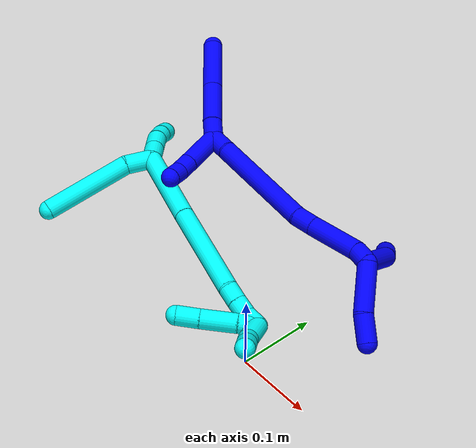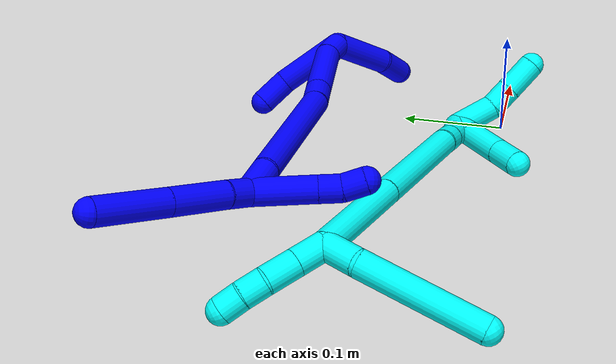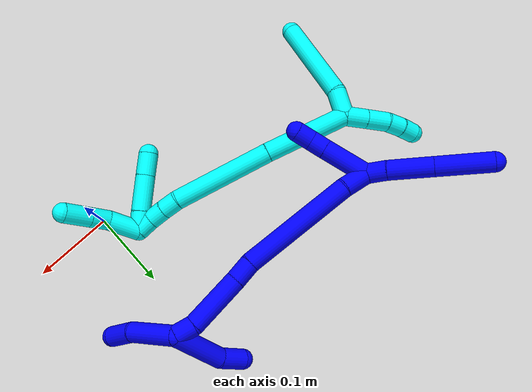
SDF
<sdf version="1.7">
 <world name="default">
  <model name="1">
   <static>0</static>
   <link name="1">
    <collision name="collision-cylinder-e_1_2_8">
     <pose>-0.003101 -0.00076 0.012139 0.06253 -0.249607 -0.007847</pose>
     <geometry><cylinder><radius>0.0125</radius><length>0.025104</length></cylinder></geometry>
     <surface>
      <friction><ode><mu>1.16</mu><mu2>1.16</mu2><slip1>0</slip1><slip2>0</slip2></ode></friction>
      <contact><ode><kp>1e+06</kp><kd>1</kd><max_vel>0</max_vel><min_depth>0.001</min_depth></ode></contact>
     </surface>
    </collision>
    <visual name="visual-cylinder-e_1_2_8">
     <pose>-0.003101 -0.00076 0.012139 0.06253 -0.249607 -0.007847</pose>
     <geometry><cylinder><radius>0.0125</radius><length>0.025104</length></cylinder></geometry>
     <material><ambient>0 0 1 1</ambient></material>
    </visual>
    <collision name="collision-cylinder-e_2_8_9">
     <pose>-0.011463 -0.001042 0.051624 -0.017496 -0.190067 0.001668</pose>
     <geometry><cylinder><radius>0.0125</radius><length>0.055702</length></cylinder></geometry>
     <surface>
      <friction><ode><mu>1.16</mu><mu2>1.16</mu2><slip1>0</slip1><slip2>0</slip2></ode></friction>
      <contact><ode><kp>1e+06</kp><kd>1</kd><max_vel>0</max_vel><min_depth>0.001</min_depth></ode></contact>
     </surface>
    </collision>
    <visual name="visual-cylinder-e_2_8_9">
     <pose>-0.011463 -0.001042 0.051624 -0.017496 -0.190067 0.001668</pose>
     <geometry><cylinder><radius>0.0125</radius><length>0.055702</length></cylinder></geometry>
     <material><ambient>0 0 1 1</ambient></material>
    </visual>
    <collision name="collision-cylinder-e_3_9_6">
     <pose>-0.023148 -0.000128 0.112962 -0.012815 -0.186739 0.0012</pose>
     <geometry><cylinder><radius>0.0125</radius><length>0.069194</length></cylinder></geometry>
     <surface>
      <friction><ode><mu>1.16</mu><mu2>1.16</mu2><slip1>0</slip1><slip2>0</slip2></ode></friction>
      <contact><ode><kp>1e+06</kp><kd>1</kd><max_vel>0</max_vel><min_depth>0.001</min_depth></ode></contact>
     </surface>
    </collision>
    <visual name="visual-cylinder-e_3_9_6">
     <pose>-0.023148 -0.000128 0.112962 -0.012815 -0.186739 0.0012</pose>
     <geometry><cylinder><radius>0.0125</radius><length>0.069194</length></cylinder></geometry>
     <material><ambient>0 0 1 1</ambient></material>
    </visual>
    <collision name="collision-cylinder-e_1_2_10">
     <pose>-0.009799 -0.009383 -0.025579 2.78999 -0.345245 -1.55218</pose>
     <geometry><cylinder><radius>0.0125</radius><length>0.057908</length></cylinder></geometry>
     <surface>
      <friction><ode><mu>1.16</mu><mu2>1.16</mu2><slip1>0</slip1><slip2>0</slip2></ode></friction>
      <contact><ode><kp>1e+06</kp><kd>1</kd><max_vel>0</max_vel><min_depth>0.001</min_depth></ode></contact>
     </surface>
    </collision>
    <visual name="visual-cylinder-e_1_2_10">
     <pose>-0.009799 -0.009383 -0.025579 2.78999 -0.345245 -1.55218</pose>
     <geometry><cylinder><radius>0.0125</radius><length>0.057908</length></cylinder></geometry>
     <material><ambient>0 0 1 1</ambient></material>
    </visual>
    <collision name="collision-cylinder-e_2_10_11">
     <pose>-0.023233 -0.02214 -0.060171 2.78349 -0.361186 -1.57957</pose>
     <geometry><cylinder><radius>0.0125</radius><length>0.020577</length></cylinder></geometry>
     <surface>
      <friction><ode><mu>1.16</mu><mu2>1.16</mu2><slip1>0</slip1><slip2>0</slip2></ode></friction>
      <contact><ode><kp>1e+06</kp><kd>1</kd><max_vel>0</max_vel><min_depth>0.001</min_depth></ode></contact>
     </surface>
    </collision>
    <visual name="visual-cylinder-e_2_10_11">
     <pose>-0.023233 -0.02214 -0.060171 2.78349 -0.361186 -1.57957</pose>
     <geometry><cylinder><radius>0.0125</radius><length>0.020577</length></cylinder></geometry>
     <material><ambient>0 0 1 1</ambient></material>
    </visual>
    <collision name="collision-cylinder-e_3_11_5">
     <pose>-0.029346 -0.031558 -0.077732 2.52601 -0.232313 -0.703559</pose>
     <geometry><cylinder><radius>0.0125</radius><length>0.021515</length></cylinder></geometry>
     <surface>
      <friction><ode><mu>1.16</mu><mu2>1.16</mu2><slip1>0</slip1><slip2>0</slip2></ode></friction>
      <contact><ode><kp>1e+06</kp><kd>1</kd><max_vel>0</max_vel><min_depth>0.001</min_depth></ode></contact>
     </surface>
    </collision>
    <visual name="visual-cylinder-e_3_11_5">
     <pose>-0.029346 -0.031558 -0.077732 2.52601 -0.232313 -0.703559</pose>
     <geometry><cylinder><radius>0.0125</radius><length>0.021515</length></cylinder></geometry>
     <material><ambient>0 0 1 1</ambient></material>
    </visual>
    <collision name="collision-cylinder-e_1_2_12">
     <pose>0.011809 -0.003394 -0.011176 2.84679 0.790903 2.45813</pose>
     <geometry><cylinder><radius>0.0125</radius><length>0.033219</length></cylinder></geometry>
     <surface>
      <friction><ode><mu>1.16</mu><mu2>1.16</mu2><slip1>0</slip1><slip2>0</slip2></ode></friction>
      <contact><ode><kp>1e+06</kp><kd>1</kd><max_vel>0</max_vel><min_depth>0.001</min_depth></ode></contact>
     </surface>
    </collision>
    <visual name="visual-cylinder-e_1_2_12">
     <pose>0.011809 -0.003394 -0.011176 2.84679 0.790903 2.45813</pose>
     <geometry><cylinder><radius>0.0125</radius><length>0.033219</length></cylinder></geometry>
     <material><ambient>0 0 1 1</ambient></material>
    </visual>
    <collision name="collision-cylinder-e_2_12_13">
     <pose>0.078215 -0.009401 -0.069756 3.08652 0.855044 3.02083</pose>
     <geometry><cylinder><radius>0.0125</radius><length>0.144705</length></cylinder></geometry>
     <surface>
      <friction><ode><mu>1.16</mu><mu2>1.16</mu2><slip1>0</slip1><slip2>0</slip2></ode></friction>
      <contact><ode><kp>1e+06</kp><kd>1</kd><max_vel>0</max_vel><min_depth>0.001</min_depth></ode></contact>
     </surface>
    </collision>
    <visual name="visual-cylinder-e_2_12_13">
     <pose>0.078215 -0.009401 -0.069756 3.08652 0.855044 3.02083</pose>
     <geometry><cylinder><radius>0.0125</radius><length>0.144705</length></cylinder></geometry>
     <material><ambient>0 0 1 1</ambient></material>
    </visual>
    <collision name="collision-cylinder-e_3_13_14">
     <pose>0.144475 -0.012041 -0.123844 3.13762 1.05043 3.13474</pose>
     <geometry><cylinder><radius>0.0125</radius><length>0.026883</length></cylinder></geometry>
     <surface>
      <friction><ode><mu>1.16</mu><mu2>1.16</mu2><slip1>0</slip1><slip2>0</slip2></ode></friction>
      <contact><ode><kp>1e+06</kp><kd>1</kd><max_vel>0</max_vel><min_depth>0.001</min_depth></ode></contact>
     </surface>
    </collision>
    <visual name="visual-cylinder-e_3_13_14">
     <pose>0.144475 -0.012041 -0.123844 3.13762 1.05043 3.13474</pose>
     <geometry><cylinder><radius>0.0125</radius><length>0.026883</length></cylinder></geometry>
     <material><ambient>0 0 1 1</ambient></material>
    </visual>
    <collision name="collision-cylinder-e_4_14_15">
     <pose>0.186707 -0.015673 -0.148285 2.94124 1.03572 2.79233</pose>
     <geometry><cylinder><radius>0.0125</radius><length>0.071072</length></cylinder></geometry>
     <surface>
      <friction><ode><mu>1.16</mu><mu2>1.16</mu2><slip1>0</slip1><slip2>0</slip2></ode></friction>
      <contact><ode><kp>1e+06</kp><kd>1</kd><max_vel>0</max_vel><min_depth>0.001</min_depth></ode></contact>
     </surface>
    </collision>
    <visual name="visual-cylinder-e_4_14_15">
     <pose>0.186707 -0.015673 -0.148285 2.94124 1.03572 2.79233</pose>
     <geometry><cylinder><radius>0.0125</radius><length>0.071072</length></cylinder></geometry>
     <material><ambient>0 0 1 1</ambient></material>
    </visual>
    <collision name="collision-cylinder-e_5_15_1">
     <pose>0.225257 -0.021465 -0.174817 2.89748 0.723133 2.51431</pose>
     <geometry><cylinder><radius>0.0125</radius><length>0.024121</length></cylinder></geometry>
     <surface>
      <friction><ode><mu>1.16</mu><mu2>1.16</mu2><slip1>0</slip1><slip2>0</slip2></ode></friction>
      <contact><ode><kp>1e+06</kp><kd>1</kd><max_vel>0</max_vel><min_depth>0.001</min_depth></ode></contact>
     </surface>
    </collision>
    <visual name="visual-cylinder-e_5_15_1">
     <pose>0.225257 -0.021465 -0.174817 2.89748 0.723133 2.51431</pose>
     <geometry><cylinder><radius>0.0125</radius><length>0.024121</length></cylinder></geometry>
     <material><ambient>0 0 1 1</ambient></material>
    </visual>
    <collision name="collision-cylinder-e_1_1_16">
     <pose>0.234258 -0.015686 -0.214457 -2.88907 0.032001 -0.250803</pose>
     <geometry><cylinder><radius>0.0125</radius><length>0.063787</length></cylinder></geometry>
     <surface>
      <friction><ode><mu>1.16</mu><mu2>1.16</mu2><slip1>0</slip1><slip2>0</slip2></ode></friction>
      <contact><ode><kp>1e+06</kp><kd>1</kd><max_vel>0</max_vel><min_depth>0.001</min_depth></ode></contact>
     </surface>
    </collision>
    <visual name="visual-cylinder-e_1_1_16">
     <pose>0.234258 -0.015686 -0.214457 -2.88907 0.032001 -0.250803</pose>
     <geometry><cylinder><radius>0.0125</radius><length>0.063787</length></cylinder></geometry>
     <material><ambient>0 0 1 1</ambient></material>
    </visual>
    <collision name="collision-cylinder-e_2_16_4">
     <pose>0.238936 -8.6e-05 -0.261328 -2.69645 0.203381 -0.84716</pose>
     <geometry><cylinder><radius>0.0125</radius><length>0.036213</length></cylinder></geometry>
     <surface>
      <friction><ode><mu>1.16</mu><mu2>1.16</mu2><slip1>0</slip1><slip2>0</slip2></ode></friction>
      <contact><ode><kp>1e+06</kp><kd>1</kd><max_vel>0</max_vel><min_depth>0.001</min_depth></ode></contact>
     </surface>
    </collision>
    <visual name="visual-cylinder-e_2_16_4">
     <pose>0.238936 -8.6e-05 -0.261328 -2.69645 0.203381 -0.84716</pose>
     <geometry><cylinder><radius>0.0125</radius><length>0.036213</length></cylinder></geometry>
     <material><ambient>0 0 1 1</ambient></material>
    </visual>
    <collision name="collision-cylinder-e_1_1_17">
     <pose>0.238022 0.003437 -0.163505 -0.932752 0.140938 -0.071038</pose>
     <geometry><cylinder><radius>0.0125</radius><length>0.068119</length></cylinder></geometry>
     <surface>
      <friction><ode><mu>1.16</mu><mu2>1.16</mu2><slip1>0</slip1><slip2>0</slip2></ode></friction>
      <contact><ode><kp>1e+06</kp><kd>1</kd><max_vel>0</max_vel><min_depth>0.001</min_depth></ode></contact>
     </surface>
    </collision>
    <visual name="visual-cylinder-e_1_1_17">
     <pose>0.238022 0.003437 -0.163505 -0.932752 0.140938 -0.071038</pose>
     <geometry><cylinder><radius>0.0125</radius><length>0.068119</length></cylinder></geometry>
     <material><ambient>0 0 1 1</ambient></material>
    </visual>
    <collision name="collision-cylinder-e_2_17_3">
     <pose>0.239753 0.042132 -0.132929 -0.835881 -0.192721 0.085801</pose>
     <geometry><cylinder><radius>0.0125</radius><length>0.031881</length></cylinder></geometry>
     <surface>
      <friction><ode><mu>1.16</mu><mu2>1.16</mu2><slip1>0</slip1><slip2>0</slip2></ode></friction>
      <contact><ode><kp>1e+06</kp><kd>1</kd><max_vel>0</max_vel><min_depth>0.001</min_depth></ode></contact>
     </surface>
    </collision>
    <visual name="visual-cylinder-e_2_17_3">
     <pose>0.239753 0.042132 -0.132929 -0.835881 -0.192721 0.085801</pose>
     <geometry><cylinder><radius>0.0125</radius><length>0.031881</length></cylinder></geometry>
     <material><ambient>0 0 1 1</ambient></material>
    </visual>
    <collision name="collision-sphere-3">
     <pose>0.2367 0.053739 -0.122438 0 -0 0</pose>
     <geometry><sphere><radius>0.0125</radius></sphere></geometry>
     <surface>
      <friction><ode><mu>1.16</mu><mu2>1.16</mu2><slip1>0</slip1><slip2>0</slip2></ode></friction>
      <contact><ode><kp>1e+06</kp><kd>1</kd><max_vel>0</max_vel><min_depth>0.001</min_depth></ode></contact>
     </surface>
    </collision>
    <visual name="visual-sphere-3">
     <pose>0.2367 0.053739 -0.122438 0 -0 0</pose>
     <geometry><sphere><radius>0.0125</radius></sphere></geometry>
     <material><ambient>0 0 1 1</ambient></material>
    </visual>
    <collision name="collision-sphere-17">
     <pose>0.242806 0.030524 -0.143419 0 -0 0</pose>
     <geometry><sphere><radius>0.0125</radius></sphere></geometry>
     <surface>
      <friction><ode><mu>1.16</mu><mu2>1.16</mu2><slip1>0</slip1><slip2>0</slip2></ode></friction>
      <contact><ode><kp>1e+06</kp><kd>1</kd><max_vel>0</max_vel><min_depth>0.001</min_depth></ode></contact>
     </surface>
    </collision>
    <visual name="visual-sphere-17">
     <pose>0.242806 0.030524 -0.143419 0 -0 0</pose>
     <geometry><sphere><radius>0.0125</radius></sphere></geometry>
     <material><ambient>0 0 1 1</ambient></material>
    </visual>
    <collision name="collision-sphere-4">
     <pose>0.242593 0.00755 -0.277333 0 -0 0</pose>
     <geometry><sphere><radius>0.0125</radius></sphere></geometry>
     <surface>
      <friction><ode><mu>1.16</mu><mu2>1.16</mu2><slip1>0</slip1><slip2>0</slip2></ode></friction>
      <contact><ode><kp>1e+06</kp><kd>1</kd><max_vel>0</max_vel><min_depth>0.001</min_depth></ode></contact>
     </surface>
    </collision>
    <visual name="visual-sphere-4">
     <pose>0.242593 0.00755 -0.277333 0 -0 0</pose>
     <geometry><sphere><radius>0.0125</radius></sphere></geometry>
     <material><ambient>0 0 1 1</ambient></material>
    </visual>
    <collision name="collision-sphere-16">
     <pose>0.235278 -0.007722 -0.245323 0 -0 0</pose>
     <geometry><sphere><radius>0.0125</radius></sphere></geometry>
     <surface>
      <friction><ode><mu>1.16</mu><mu2>1.16</mu2><slip1>0</slip1><slip2>0</slip2></ode></friction>
      <contact><ode><kp>1e+06</kp><kd>1</kd><max_vel>0</max_vel><min_depth>0.001</min_depth></ode></contact>
     </surface>
    </collision>
    <visual name="visual-sphere-16">
     <pose>0.235278 -0.007722 -0.245323 0 -0 0</pose>
     <geometry><sphere><radius>0.0125</radius></sphere></geometry>
     <material><ambient>0 0 1 1</ambient></material>
    </visual>
    <collision name="collision-sphere-1">
     <pose>0.233237 -0.023651 -0.183591 0 -0 0</pose>
     <geometry><sphere><radius>0.0125</radius></sphere></geometry>
     <surface>
      <friction><ode><mu>1.16</mu><mu2>1.16</mu2><slip1>0</slip1><slip2>0</slip2></ode></friction>
      <contact><ode><kp>1e+06</kp><kd>1</kd><max_vel>0</max_vel><min_depth>0.001</min_depth></ode></contact>
     </surface>
    </collision>
    <visual name="visual-sphere-1">
     <pose>0.233237 -0.023651 -0.183591 0 -0 0</pose>
     <geometry><sphere><radius>0.0125</radius></sphere></geometry>
     <material><ambient>0 0 1 1</ambient></material>
    </visual>
    <collision name="collision-sphere-15">
     <pose>0.217276 -0.01928 -0.166043 0 -0 0</pose>
     <geometry><sphere><radius>0.0125</radius></sphere></geometry>
     <surface>
      <friction><ode><mu>1.16</mu><mu2>1.16</mu2><slip1>0</slip1><slip2>0</slip2></ode></friction>
      <contact><ode><kp>1e+06</kp><kd>1</kd><max_vel>0</max_vel><min_depth>0.001</min_depth></ode></contact>
     </surface>
    </collision>
    <visual name="visual-sphere-15">
     <pose>0.217276 -0.01928 -0.166043 0 -0 0</pose>
     <geometry><sphere><radius>0.0125</radius></sphere></geometry>
     <material><ambient>0 0 1 1</ambient></material>
    </visual>
    <collision name="collision-sphere-14">
     <pose>0.156137 -0.012067 -0.130527 0 -0 0</pose>
     <geometry><sphere><radius>0.0125</radius></sphere></geometry>
     <surface>
      <friction><ode><mu>1.16</mu><mu2>1.16</mu2><slip1>0</slip1><slip2>0</slip2></ode></friction>
      <contact><ode><kp>1e+06</kp><kd>1</kd><max_vel>0</max_vel><min_depth>0.001</min_depth></ode></contact>
     </surface>
    </collision>
    <visual name="visual-sphere-14">
     <pose>0.156137 -0.012067 -0.130527 0 -0 0</pose>
     <geometry><sphere><radius>0.0125</radius></sphere></geometry>
     <material><ambient>0 0 1 1</ambient></material>
    </visual>
    <collision name="collision-sphere-13">
     <pose>0.132812 -0.012014 -0.117161 0 -0 0</pose>
     <geometry><sphere><radius>0.0125</radius></sphere></geometry>
     <surface>
      <friction><ode><mu>1.16</mu><mu2>1.16</mu2><slip1>0</slip1><slip2>0</slip2></ode></friction>
      <contact><ode><kp>1e+06</kp><kd>1</kd><max_vel>0</max_vel><min_depth>0.001</min_depth></ode></contact>
     </surface>
    </collision>
    <visual name="visual-sphere-13">
     <pose>0.132812 -0.012014 -0.117161 0 -0 0</pose>
     <geometry><sphere><radius>0.0125</radius></sphere></geometry>
     <material><ambient>0 0 1 1</ambient></material>
    </visual>
    <collision name="collision-sphere-12">
     <pose>0.023618 -0.006787 -0.022352 0 -0 0</pose>
     <geometry><sphere><radius>0.0125</radius></sphere></geometry>
     <surface>
      <friction><ode><mu>1.16</mu><mu2>1.16</mu2><slip1>0</slip1><slip2>0</slip2></ode></friction>
      <contact><ode><kp>1e+06</kp><kd>1</kd><max_vel>0</max_vel><min_depth>0.001</min_depth></ode></contact>
     </surface>
    </collision>
    <visual name="visual-sphere-12">
     <pose>0.023618 -0.006787 -0.022352 0 -0 0</pose>
     <geometry><sphere><radius>0.0125</radius></sphere></geometry>
     <material><ambient>0 0 1 1</ambient></material>
    </visual>
    <collision name="collision-sphere-5">
     <pose>-0.031823 -0.037603 -0.086279 0 -0 0</pose>
     <geometry><sphere><radius>0.0125</radius></sphere></geometry>
     <surface>
      <friction><ode><mu>1.16</mu><mu2>1.16</mu2><slip1>0</slip1><slip2>0</slip2></ode></friction>
      <contact><ode><kp>1e+06</kp><kd>1</kd><max_vel>0</max_vel><min_depth>0.001</min_depth></ode></contact>
     </surface>
    </collision>
    <visual name="visual-sphere-5">
     <pose>-0.031823 -0.037603 -0.086279 0 -0 0</pose>
     <geometry><sphere><radius>0.0125</radius></sphere></geometry>
     <material><ambient>0 0 1 1</ambient></material>
    </visual>
    <collision name="collision-sphere-8">
     <pose>-0.006201 -0.00152 0.024279 0 -0 0</pose>
     <geometry><sphere><radius>0.0125</radius></sphere></geometry>
     <surface>
      <friction><ode><mu>1.16</mu><mu2>1.16</mu2><slip1>0</slip1><slip2>0</slip2></ode></friction>
      <contact><ode><kp>1e+06</kp><kd>1</kd><max_vel>0</max_vel><min_depth>0.001</min_depth></ode></contact>
     </surface>
    </collision>
    <visual name="visual-sphere-8">
     <pose>-0.006201 -0.00152 0.024279 0 -0 0</pose>
     <geometry><sphere><radius>0.0125</radius></sphere></geometry>
     <material><ambient>0 0 1 1</ambient></material>
    </visual>
    <collision name="collision-sphere-2">
     <geometry><sphere><radius>0.0125</radius></sphere></geometry>
     <surface>
      <friction><ode><mu>1.16</mu><mu2>1.16</mu2><slip1>0</slip1><slip2>0</slip2></ode></friction>
      <contact><ode><kp>1e+06</kp><kd>1</kd><max_vel>0</max_vel><min_depth>0.001</min_depth></ode></contact>
     </surface>
    </collision>
    <visual name="visual-sphere-2">
     <geometry><sphere><radius>0.0125</radius></sphere></geometry>
     <material><ambient>0 0 1 1</ambient></material>
    </visual>
    <collision name="collision-sphere-9">
     <pose>-0.016725 -0.000563 0.078969 0 -0 0</pose>
     <geometry><sphere><radius>0.0125</radius></sphere></geometry>
     <surface>
      <friction><ode><mu>1.16</mu><mu2>1.16</mu2><slip1>0</slip1><slip2>0</slip2></ode></friction>
      <contact><ode><kp>1e+06</kp><kd>1</kd><max_vel>0</max_vel><min_depth>0.001</min_depth></ode></contact>
     </surface>
    </collision>
    <visual name="visual-sphere-9">
     <pose>-0.016725 -0.000563 0.078969 0 -0 0</pose>
     <geometry><sphere><radius>0.0125</radius></sphere></geometry>
     <material><ambient>0 0 1 1</ambient></material>
    </visual>
    <collision name="collision-sphere-6">
     <pose>-0.029571 0.000308 0.146954 0 -0 0</pose>
     <geometry><sphere><radius>0.0125</radius></sphere></geometry>
     <surface>
      <friction><ode><mu>1.16</mu><mu2>1.16</mu2><slip1>0</slip1><slip2>0</slip2></ode></friction>
      <contact><ode><kp>1e+06</kp><kd>1</kd><max_vel>0</max_vel><min_depth>0.001</min_depth></ode></contact>
     </surface>
    </collision>
    <visual name="visual-sphere-6">
     <pose>-0.029571 0.000308 0.146954 0 -0 0</pose>
     <geometry><sphere><radius>0.0125</radius></sphere></geometry>
     <material><ambient>0 0 1 1</ambient></material>
    </visual>
    <collision name="collision-sphere-10">
     <pose>-0.019598 -0.018767 -0.051157 0 -0 0</pose>
     <geometry><sphere><radius>0.0125</radius></sphere></geometry>
     <surface>
      <friction><ode><mu>1.16</mu><mu2>1.16</mu2><slip1>0</slip1><slip2>0</slip2></ode></friction>
      <contact><ode><kp>1e+06</kp><kd>1</kd><max_vel>0</max_vel><min_depth>0.001</min_depth></ode></contact>
     </surface>
    </collision>
    <visual name="visual-sphere-10">
     <pose>-0.019598 -0.018767 -0.051157 0 -0 0</pose>
     <geometry><sphere><radius>0.0125</radius></sphere></geometry>
     <material><ambient>0 0 1 1</ambient></material>
    </visual>
    <collision name="collision-sphere-11">
     <pose>-0.026869 -0.025513 -0.069185 0 -0 0</pose>
     <geometry><sphere><radius>0.0125</radius></sphere></geometry>
     <surface>
      <friction><ode><mu>1.16</mu><mu2>1.16</mu2><slip1>0</slip1><slip2>0</slip2></ode></friction>
      <contact><ode><kp>1e+06</kp><kd>1</kd><max_vel>0</max_vel><min_depth>0.001</min_depth></ode></contact>
     </surface>
    </collision>
    <visual name="visual-sphere-11">
     <pose>-0.026869 -0.025513 -0.069185 0 -0 0</pose>
     <geometry><sphere><radius>0.0125</radius></sphere></geometry>
     <material><ambient>0 0 1 1</ambient></material>
    </visual>
    <inertial>
     <pose>0.103673 -0.006158 -0.080619 0 -0 0</pose>
     <mass>0.75</mass>
     <inertia>
      <ixx>-6.8e-05</ixx>
      <ixy>0</ixy>
      <ixz>0</ixz>
      <iyy>0.000344</iyy>
      <iyz>0</iyz>
      <izz>-0.000244</izz>
     </inertia>
    </inertial>
   </link>
   <pose>-0.277218 0.187214 0.063351 -1.28737 -0.141916 0.627883</pose>
  </model>
  <model name="3">
   <static>0</static>
   <link name="3">
    <collision name="collision-cylinder-e_1_2_8">
     <pose>-0.014028 0.00648 -0.007565 -2.4333 -0.953312 1.89878</pose>
     <geometry><cylinder><radius>0.0125</radius><length>0.03441</length></cylinder></geometry>
     <surface>
      <friction><ode><mu>1.16</mu><mu2>1.16</mu2><slip1>0</slip1><slip2>0</slip2></ode></friction>
      <contact><ode><kp>1e+06</kp><kd>1</kd><max_vel>0</max_vel><min_depth>0.001</min_depth></ode></contact>
     </surface>
    </collision>
    <visual name="visual-cylinder-e_1_2_8">
     <pose>-0.014028 0.00648 -0.007565 -2.4333 -0.953312 1.89878</pose>
     <geometry><cylinder><radius>0.0125</radius><length>0.03441</length></cylinder></geometry>
     <material><ambient>0.003922 1 0.996078 1</ambient></material>
    </visual>
    <collision name="collision-cylinder-e_2_8_6">
     <pose>-0.063289 0.046647 -0.046181 -2.3155 -0.655586 1.3198</pose>
     <geometry><cylinder><radius>0.0125</radius><length>0.11559</length></cylinder></geometry>
     <surface>
      <friction><ode><mu>1.16</mu><mu2>1.16</mu2><slip1>0</slip1><slip2>0</slip2></ode></friction>
      <contact><ode><kp>1e+06</kp><kd>1</kd><max_vel>0</max_vel><min_depth>0.001</min_depth></ode></contact>
     </surface>
    </collision>
    <visual name="visual-cylinder-e_2_8_6">
     <pose>-0.063289 0.046647 -0.046181 -2.3155 -0.655586 1.3198</pose>
     <geometry><cylinder><radius>0.0125</radius><length>0.11559</length></cylinder></geometry>
     <material><ambient>0.003922 1 0.996078 1</ambient></material>
    </visual>
    <collision name="collision-cylinder-e_1_2_9">
     <pose>-0.002821 -0.000808 0.014085 0.057273 -0.197321 -0.00567</pose>
     <geometry><cylinder><radius>0.0125</radius><length>0.028775</length></cylinder></geometry>
     <surface>
      <friction><ode><mu>1.16</mu><mu2>1.16</mu2><slip1>0</slip1><slip2>0</slip2></ode></friction>
      <contact><ode><kp>1e+06</kp><kd>1</kd><max_vel>0</max_vel><min_depth>0.001</min_depth></ode></contact>
     </surface>
    </collision>
    <visual name="visual-cylinder-e_1_2_9">
     <pose>-0.002821 -0.000808 0.014085 0.057273 -0.197321 -0.00567</pose>
     <geometry><cylinder><radius>0.0125</radius><length>0.028775</length></cylinder></geometry>
     <material><ambient>0.003922 1 0.996078 1</ambient></material>
    </visual>
    <collision name="collision-cylinder-e_2_9_10">
     <pose>-0.0084 -0.002417 0.042498 0.055902 -0.189949 -0.005327</pose>
     <geometry><cylinder><radius>0.0125</radius><length>0.029226</length></cylinder></geometry>
     <surface>
      <friction><ode><mu>1.16</mu><mu2>1.16</mu2><slip1>0</slip1><slip2>0</slip2></ode></friction>
      <contact><ode><kp>1e+06</kp><kd>1</kd><max_vel>0</max_vel><min_depth>0.001</min_depth></ode></contact>
     </surface>
    </collision>
    <visual name="visual-cylinder-e_2_9_10">
     <pose>-0.0084 -0.002417 0.042498 0.055902 -0.189949 -0.005327</pose>
     <geometry><cylinder><radius>0.0125</radius><length>0.029226</length></cylinder></geometry>
     <material><ambient>0.003922 1 0.996078 1</ambient></material>
    </visual>
    <collision name="collision-cylinder-e_3_10_11">
     <pose>-0.01132 -0.002485 0.067595 -0.068004 -0.01494 0.000508</pose>
     <geometry><cylinder><radius>0.0125</radius><length>0.021591</length></cylinder></geometry>
     <surface>
      <friction><ode><mu>1.16</mu><mu2>1.16</mu2><slip1>0</slip1><slip2>0</slip2></ode></friction>
      <contact><ode><kp>1e+06</kp><kd>1</kd><max_vel>0</max_vel><min_depth>0.001</min_depth></ode></contact>
     </surface>
    </collision>
    <visual name="visual-cylinder-e_3_10_11">
     <pose>-0.01132 -0.002485 0.067595 -0.068004 -0.01494 0.000508</pose>
     <geometry><cylinder><radius>0.0125</radius><length>0.021591</length></cylinder></geometry>
     <material><ambient>0.003922 1 0.996078 1</ambient></material>
    </visual>
    <collision name="collision-cylinder-e_4_11_5">
     <pose>-0.010933 1.5e-05 0.088399 -0.174241 0.053759 -0.004697</pose>
     <geometry><cylinder><radius>0.0125</radius><length>0.020408</length></cylinder></geometry>
     <surface>
      <friction><ode><mu>1.16</mu><mu2>1.16</mu2><slip1>0</slip1><slip2>0</slip2></ode></friction>
      <contact><ode><kp>1e+06</kp><kd>1</kd><max_vel>0</max_vel><min_depth>0.001</min_depth></ode></contact>
     </surface>
    </collision>
    <visual name="visual-cylinder-e_4_11_5">
     <pose>-0.010933 1.5e-05 0.088399 -0.174241 0.053759 -0.004697</pose>
     <geometry><cylinder><radius>0.0125</radius><length>0.020408</length></cylinder></geometry>
     <material><ambient>0.003922 1 0.996078 1</ambient></material>
    </visual>
    <collision name="collision-cylinder-e_1_2_12">
     <pose>0.03673 0.011597 -0.037958 -2.84509 0.746684 -2.41308</pose>
     <geometry><cylinder><radius>0.0125</radius><length>0.108156</length></cylinder></geometry>
     <surface>
      <friction><ode><mu>1.16</mu><mu2>1.16</mu2><slip1>0</slip1><slip2>0</slip2></ode></friction>
      <contact><ode><kp>1e+06</kp><kd>1</kd><max_vel>0</max_vel><min_depth>0.001</min_depth></ode></contact>
     </surface>
    </collision>
    <visual name="visual-cylinder-e_1_2_12">
     <pose>0.03673 0.011597 -0.037958 -2.84509 0.746684 -2.41308</pose>
     <geometry><cylinder><radius>0.0125</radius><length>0.108156</length></cylinder></geometry>
     <material><ambient>0.003922 1 0.996078 1</ambient></material>
    </visual>
    <collision name="collision-cylinder-e_2_12_13">
     <pose>0.118708 0.038374 -0.118949 -2.80245 0.78117 -2.35343</pose>
     <geometry><cylinder><radius>0.0125</radius><length>0.128523</length></cylinder></geometry>
     <surface>
      <friction><ode><mu>1.16</mu><mu2>1.16</mu2><slip1>0</slip1><slip2>0</slip2></ode></friction>
      <contact><ode><kp>1e+06</kp><kd>1</kd><max_vel>0</max_vel><min_depth>0.001</min_depth></ode></contact>
     </surface>
    </collision>
    <visual name="visual-cylinder-e_2_12_13">
     <pose>0.118708 0.038374 -0.118949 -2.80245 0.78117 -2.35343</pose>
     <geometry><cylinder><radius>0.0125</radius><length>0.128523</length></cylinder></geometry>
     <material><ambient>0.003922 1 0.996078 1</ambient></material>
    </visual>
    <collision name="collision-cylinder-e_3_13_14">
     <pose>0.1725 0.057436 -0.167747 -2.54909 0.887955 -2.00053</pose>
     <geometry><cylinder><radius>0.0125</radius><length>0.02203</length></cylinder></geometry>
     <surface>
      <friction><ode><mu>1.16</mu><mu2>1.16</mu2><slip1>0</slip1><slip2>0</slip2></ode></friction>
      <contact><ode><kp>1e+06</kp><kd>1</kd><max_vel>0</max_vel><min_depth>0.001</min_depth></ode></contact>
     </surface>
    </collision>
    <visual name="visual-cylinder-e_3_13_14">
     <pose>0.1725 0.057436 -0.167747 -2.54909 0.887955 -2.00053</pose>
     <geometry><cylinder><radius>0.0125</radius><length>0.02203</length></cylinder></geometry>
     <material><ambient>0.003922 1 0.996078 1</ambient></material>
    </visual>
    <collision name="collision-cylinder-e_4_14_15">
     <pose>0.189387 0.064765 -0.178717 -2.55656 0.928344 -2.05852</pose>
     <geometry><cylinder><radius>0.0125</radius><length>0.020839</length></cylinder></geometry>
     <surface>
      <friction><ode><mu>1.16</mu><mu2>1.16</mu2><slip1>0</slip1><slip2>0</slip2></ode></friction>
      <contact><ode><kp>1e+06</kp><kd>1</kd><max_vel>0</max_vel><min_depth>0.001</min_depth></ode></contact>
     </surface>
    </collision>
    <visual name="visual-cylinder-e_4_14_15">
     <pose>0.189387 0.064765 -0.178717 -2.55656 0.928344 -2.05852</pose>
     <geometry><cylinder><radius>0.0125</radius><length>0.020839</length></cylinder></geometry>
     <material><ambient>0.003922 1 0.996078 1</ambient></material>
    </visual>
    <collision name="collision-cylinder-e_5_15_1">
     <pose>0.206561 0.069831 -0.188816 -2.82218 1.0425 -2.59462</pose>
     <geometry><cylinder><radius>0.0125</radius><length>0.020453</length></cylinder></geometry>
     <surface>
      <friction><ode><mu>1.16</mu><mu2>1.16</mu2><slip1>0</slip1><slip2>0</slip2></ode></friction>
      <contact><ode><kp>1e+06</kp><kd>1</kd><max_vel>0</max_vel><min_depth>0.001</min_depth></ode></contact>
     </surface>
    </collision>
    <visual name="visual-cylinder-e_5_15_1">
     <pose>0.206561 0.069831 -0.188816 -2.82218 1.0425 -2.59462</pose>
     <geometry><cylinder><radius>0.0125</radius><length>0.020453</length></cylinder></geometry>
     <material><ambient>0.003922 1 0.996078 1</ambient></material>
    </visual>
    <collision name="collision-cylinder-e_1_1_16">
     <pose>0.214462 0.070744 -0.214088 3.10698 -0.045633 -1.84388</pose>
     <geometry><cylinder><radius>0.0125</radius><length>0.040823</length></cylinder></geometry>
     <surface>
      <friction><ode><mu>1.16</mu><mu2>1.16</mu2><slip1>0</slip1><slip2>0</slip2></ode></friction>
      <contact><ode><kp>1e+06</kp><kd>1</kd><max_vel>0</max_vel><min_depth>0.001</min_depth></ode></contact>
     </surface>
    </collision>
    <visual name="visual-cylinder-e_1_1_16">
     <pose>0.214462 0.070744 -0.214088 3.10698 -0.045633 -1.84388</pose>
     <geometry><cylinder><radius>0.0125</radius><length>0.040823</length></cylinder></geometry>
     <material><ambient>0.003922 1 0.996078 1</ambient></material>
    </visual>
    <collision name="collision-cylinder-e_2_16_17">
     <pose>0.214737 0.066325 -0.24611 2.83284 0.098352 0.612629</pose>
     <geometry><cylinder><radius>0.0125</radius><length>0.024562</length></cylinder></geometry>
     <surface>
      <friction><ode><mu>1.16</mu><mu2>1.16</mu2><slip1>0</slip1><slip2>0</slip2></ode></friction>
      <contact><ode><kp>1e+06</kp><kd>1</kd><max_vel>0</max_vel><min_depth>0.001</min_depth></ode></contact>
     </surface>
    </collision>
    <visual name="visual-cylinder-e_2_16_17">
     <pose>0.214737 0.066325 -0.24611 2.83284 0.098352 0.612629</pose>
     <geometry><cylinder><radius>0.0125</radius><length>0.024562</length></cylinder></geometry>
     <material><ambient>0.003922 1 0.996078 1</ambient></material>
    </visual>
    <collision name="collision-cylinder-e_3_17_4">
     <pose>0.217573 0.057059 -0.274065 2.81353 0.094312 0.555486</pose>
     <geometry><cylinder><radius>0.0125</radius><length>0.034615</length></cylinder></geometry>
     <surface>
      <friction><ode><mu>1.16</mu><mu2>1.16</mu2><slip1>0</slip1><slip2>0</slip2></ode></friction>
      <contact><ode><kp>1e+06</kp><kd>1</kd><max_vel>0</max_vel><min_depth>0.001</min_depth></ode></contact>
     </surface>
    </collision>
    <visual name="visual-cylinder-e_3_17_4">
     <pose>0.217573 0.057059 -0.274065 2.81353 0.094312 0.555486</pose>
     <geometry><cylinder><radius>0.0125</radius><length>0.034615</length></cylinder></geometry>
     <material><ambient>0.003922 1 0.996078 1</ambient></material>
    </visual>
    <collision name="collision-cylinder-e_1_1_18">
     <pose>0.203628 0.073239 -0.196009 -2.48021 -1.328 2.31476</pose>
     <geometry><cylinder><radius>0.0125</radius><length>0.024241</length></cylinder></geometry>
     <surface>
      <friction><ode><mu>1.16</mu><mu2>1.16</mu2><slip1>0</slip1><slip2>0</slip2></ode></friction>
      <contact><ode><kp>1e+06</kp><kd>1</kd><max_vel>0</max_vel><min_depth>0.001</min_depth></ode></contact>
     </surface>
    </collision>
    <visual name="visual-cylinder-e_1_1_18">
     <pose>0.203628 0.073239 -0.196009 -2.48021 -1.328 2.31476</pose>
     <geometry><cylinder><radius>0.0125</radius><length>0.024241</length></cylinder></geometry>
     <material><ambient>0.003922 1 0.996078 1</ambient></material>
    </visual>
    <collision name="collision-cylinder-e_2_18_19">
     <pose>0.169322 0.078926 -0.201942 -2.32124 -1.33871 2.13652</pose>
     <geometry><cylinder><radius>0.0125</radius><length>0.046324</length></cylinder></geometry>
     <surface>
      <friction><ode><mu>1.16</mu><mu2>1.16</mu2><slip1>0</slip1><slip2>0</slip2></ode></friction>
      <contact><ode><kp>1e+06</kp><kd>1</kd><max_vel>0</max_vel><min_depth>0.001</min_depth></ode></contact>
     </surface>
    </collision>
    <visual name="visual-cylinder-e_2_18_19">
     <pose>0.169322 0.078926 -0.201942 -2.32124 -1.33871 2.13652</pose>
     <geometry><cylinder><radius>0.0125</radius><length>0.046324</length></cylinder></geometry>
     <material><ambient>0.003922 1 0.996078 1</ambient></material>
    </visual>
    <collision name="collision-cylinder-e_3_19_3">
     <pose>0.132385 0.084977 -0.207744 -2.35958 -1.36154 2.2</pose>
     <geometry><cylinder><radius>0.0125</radius><length>0.029434</length></cylinder></geometry>
     <surface>
      <friction><ode><mu>1.16</mu><mu2>1.16</mu2><slip1>0</slip1><slip2>0</slip2></ode></friction>
      <contact><ode><kp>1e+06</kp><kd>1</kd><max_vel>0</max_vel><min_depth>0.001</min_depth></ode></contact>
     </surface>
    </collision>
    <visual name="visual-cylinder-e_3_19_3">
     <pose>0.132385 0.084977 -0.207744 -2.35958 -1.36154 2.2</pose>
     <geometry><cylinder><radius>0.0125</radius><length>0.029434</length></cylinder></geometry>
     <material><ambient>0.003922 1 0.996078 1</ambient></material>
    </visual>
    <collision name="collision-sphere-3">
     <pose>0.117989 0.087131 -0.209914 0 -0 0</pose>
     <geometry><sphere><radius>0.0125</radius></sphere></geometry>
     <surface>
      <friction><ode><mu>1.16</mu><mu2>1.16</mu2><slip1>0</slip1><slip2>0</slip2></ode></friction>
      <contact><ode><kp>1e+06</kp><kd>1</kd><max_vel>0</max_vel><min_depth>0.001</min_depth></ode></contact>
     </surface>
    </collision>
    <visual name="visual-sphere-3">
     <pose>0.117989 0.087131 -0.209914 0 -0 0</pose>
     <geometry><sphere><radius>0.0125</radius></sphere></geometry>
     <material><ambient>0.003922 1 0.996078 1</ambient></material>
    </visual>
    <collision name="collision-sphere-19">
     <pose>0.146781 0.082822 -0.205575 0 -0 0</pose>
     <geometry><sphere><radius>0.0125</radius></sphere></geometry>
     <surface>
      <friction><ode><mu>1.16</mu><mu2>1.16</mu2><slip1>0</slip1><slip2>0</slip2></ode></friction>
      <contact><ode><kp>1e+06</kp><kd>1</kd><max_vel>0</max_vel><min_depth>0.001</min_depth></ode></contact>
     </surface>
    </collision>
    <visual name="visual-sphere-19">
     <pose>0.146781 0.082822 -0.205575 0 -0 0</pose>
     <geometry><sphere><radius>0.0125</radius></sphere></geometry>
     <material><ambient>0.003922 1 0.996078 1</ambient></material>
    </visual>
    <collision name="collision-sphere-11">
     <pose>-0.011482 -0.001752 0.078364 0 -0 0</pose>
     <geometry><sphere><radius>0.0125</radius></sphere></geometry>
     <surface>
      <friction><ode><mu>1.16</mu><mu2>1.16</mu2><slip1>0</slip1><slip2>0</slip2></ode></friction>
      <contact><ode><kp>1e+06</kp><kd>1</kd><max_vel>0</max_vel><min_depth>0.001</min_depth></ode></contact>
     </surface>
    </collision>
    <visual name="visual-sphere-11">
     <pose>-0.011482 -0.001752 0.078364 0 -0 0</pose>
     <geometry><sphere><radius>0.0125</radius></sphere></geometry>
     <material><ambient>0.003922 1 0.996078 1</ambient></material>
    </visual>
    <collision name="collision-sphere-10">
     <pose>-0.011159 -0.003219 0.056825 0 -0 0</pose>
     <geometry><sphere><radius>0.0125</radius></sphere></geometry>
     <surface>
      <friction><ode><mu>1.16</mu><mu2>1.16</mu2><slip1>0</slip1><slip2>0</slip2></ode></friction>
      <contact><ode><kp>1e+06</kp><kd>1</kd><max_vel>0</max_vel><min_depth>0.001</min_depth></ode></contact>
     </surface>
    </collision>
    <visual name="visual-sphere-10">
     <pose>-0.011159 -0.003219 0.056825 0 -0 0</pose>
     <geometry><sphere><radius>0.0125</radius></sphere></geometry>
     <material><ambient>0.003922 1 0.996078 1</ambient></material>
    </visual>
    <collision name="collision-sphere-6">
     <pose>-0.098522 0.080333 -0.077232 0 -0 0</pose>
     <geometry><sphere><radius>0.0125</radius></sphere></geometry>
     <surface>
      <friction><ode><mu>1.16</mu><mu2>1.16</mu2><slip1>0</slip1><slip2>0</slip2></ode></friction>
      <contact><ode><kp>1e+06</kp><kd>1</kd><max_vel>0</max_vel><min_depth>0.001</min_depth></ode></contact>
     </surface>
    </collision>
    <visual name="visual-sphere-6">
     <pose>-0.098522 0.080333 -0.077232 0 -0 0</pose>
     <geometry><sphere><radius>0.0125</radius></sphere></geometry>
     <material><ambient>0.003922 1 0.996078 1</ambient></material>
    </visual>
    <collision name="collision-sphere-9">
     <pose>-0.005641 -0.001615 0.02817 0 -0 0</pose>
     <geometry><sphere><radius>0.0125</radius></sphere></geometry>
     <surface>
      <friction><ode><mu>1.16</mu><mu2>1.16</mu2><slip1>0</slip1><slip2>0</slip2></ode></friction>
      <contact><ode><kp>1e+06</kp><kd>1</kd><max_vel>0</max_vel><min_depth>0.001</min_depth></ode></contact>
     </surface>
    </collision>
    <visual name="visual-sphere-9">
     <pose>-0.005641 -0.001615 0.02817 0 -0 0</pose>
     <geometry><sphere><radius>0.0125</radius></sphere></geometry>
     <material><ambient>0.003922 1 0.996078 1</ambient></material>
    </visual>
    <collision name="collision-sphere-2">
     <geometry><sphere><radius>0.0125</radius></sphere></geometry>
     <surface>
      <friction><ode><mu>1.16</mu><mu2>1.16</mu2><slip1>0</slip1><slip2>0</slip2></ode></friction>
      <contact><ode><kp>1e+06</kp><kd>1</kd><max_vel>0</max_vel><min_depth>0.001</min_depth></ode></contact>
     </surface>
    </collision>
    <visual name="visual-sphere-2">
     <geometry><sphere><radius>0.0125</radius></sphere></geometry>
     <material><ambient>0.003922 1 0.996078 1</ambient></material>
    </visual>
    <collision name="collision-sphere-8">
     <pose>-0.028055 0.01296 -0.015131 0 -0 0</pose>
     <geometry><sphere><radius>0.0125</radius></sphere></geometry>
     <surface>
      <friction><ode><mu>1.16</mu><mu2>1.16</mu2><slip1>0</slip1><slip2>0</slip2></ode></friction>
      <contact><ode><kp>1e+06</kp><kd>1</kd><max_vel>0</max_vel><min_depth>0.001</min_depth></ode></contact>
     </surface>
    </collision>
    <visual name="visual-sphere-8">
     <pose>-0.028055 0.01296 -0.015131 0 -0 0</pose>
     <geometry><sphere><radius>0.0125</radius></sphere></geometry>
     <material><ambient>0.003922 1 0.996078 1</ambient></material>
    </visual>
    <collision name="collision-sphere-5">
     <pose>-0.010385 0.001781 0.098435 0 -0 0</pose>
     <geometry><sphere><radius>0.0125</radius></sphere></geometry>
     <surface>
      <friction><ode><mu>1.16</mu><mu2>1.16</mu2><slip1>0</slip1><slip2>0</slip2></ode></friction>
      <contact><ode><kp>1e+06</kp><kd>1</kd><max_vel>0</max_vel><min_depth>0.001</min_depth></ode></contact>
     </surface>
    </collision>
    <visual name="visual-sphere-5">
     <pose>-0.010385 0.001781 0.098435 0 -0 0</pose>
     <geometry><sphere><radius>0.0125</radius></sphere></geometry>
     <material><ambient>0.003922 1 0.996078 1</ambient></material>
    </visual>
    <collision name="collision-sphere-12">
     <pose>0.07346 0.023193 -0.075917 0 -0 0</pose>
     <geometry><sphere><radius>0.0125</radius></sphere></geometry>
     <surface>
      <friction><ode><mu>1.16</mu><mu2>1.16</mu2><slip1>0</slip1><slip2>0</slip2></ode></friction>
      <contact><ode><kp>1e+06</kp><kd>1</kd><max_vel>0</max_vel><min_depth>0.001</min_depth></ode></contact>
     </surface>
    </collision>
    <visual name="visual-sphere-12">
     <pose>0.07346 0.023193 -0.075917 0 -0 0</pose>
     <geometry><sphere><radius>0.0125</radius></sphere></geometry>
     <material><ambient>0.003922 1 0.996078 1</ambient></material>
    </visual>
    <collision name="collision-sphere-13">
     <pose>0.163955 0.053555 -0.161981 0 -0 0</pose>
     <geometry><sphere><radius>0.0125</radius></sphere></geometry>
     <surface>
      <friction><ode><mu>1.16</mu><mu2>1.16</mu2><slip1>0</slip1><slip2>0</slip2></ode></friction>
      <contact><ode><kp>1e+06</kp><kd>1</kd><max_vel>0</max_vel><min_depth>0.001</min_depth></ode></contact>
     </surface>
    </collision>
    <visual name="visual-sphere-13">
     <pose>0.163955 0.053555 -0.161981 0 -0 0</pose>
     <geometry><sphere><radius>0.0125</radius></sphere></geometry>
     <material><ambient>0.003922 1 0.996078 1</ambient></material>
    </visual>
    <collision name="collision-sphere-14">
     <pose>0.181045 0.061317 -0.173512 0 -0 0</pose>
     <geometry><sphere><radius>0.0125</radius></sphere></geometry>
     <surface>
      <friction><ode><mu>1.16</mu><mu2>1.16</mu2><slip1>0</slip1><slip2>0</slip2></ode></friction>
      <contact><ode><kp>1e+06</kp><kd>1</kd><max_vel>0</max_vel><min_depth>0.001</min_depth></ode></contact>
     </surface>
    </collision>
    <visual name="visual-sphere-14">
     <pose>0.181045 0.061317 -0.173512 0 -0 0</pose>
     <geometry><sphere><radius>0.0125</radius></sphere></geometry>
     <material><ambient>0.003922 1 0.996078 1</ambient></material>
    </visual>
    <collision name="collision-sphere-15">
     <pose>0.197729 0.068212 -0.183922 0 -0 0</pose>
     <geometry><sphere><radius>0.0125</radius></sphere></geometry>
     <surface>
      <friction><ode><mu>1.16</mu><mu2>1.16</mu2><slip1>0</slip1><slip2>0</slip2></ode></friction>
      <contact><ode><kp>1e+06</kp><kd>1</kd><max_vel>0</max_vel><min_depth>0.001</min_depth></ode></contact>
     </surface>
    </collision>
    <visual name="visual-sphere-15">
     <pose>0.197729 0.068212 -0.183922 0 -0 0</pose>
     <geometry><sphere><radius>0.0125</radius></sphere></geometry>
     <material><ambient>0.003922 1 0.996078 1</ambient></material>
    </visual>
    <collision name="collision-sphere-1">
     <pose>0.215394 0.07145 -0.19371 0 -0 0</pose>
     <geometry><sphere><radius>0.0125</radius></sphere></geometry>
     <surface>
      <friction><ode><mu>1.16</mu><mu2>1.16</mu2><slip1>0</slip1><slip2>0</slip2></ode></friction>
      <contact><ode><kp>1e+06</kp><kd>1</kd><max_vel>0</max_vel><min_depth>0.001</min_depth></ode></contact>
     </surface>
    </collision>
    <visual name="visual-sphere-1">
     <pose>0.215394 0.07145 -0.19371 0 -0 0</pose>
     <geometry><sphere><radius>0.0125</radius></sphere></geometry>
     <material><ambient>0.003922 1 0.996078 1</ambient></material>
    </visual>
    <collision name="collision-sphere-18">
     <pose>0.191863 0.075029 -0.198309 0 -0 0</pose>
     <geometry><sphere><radius>0.0125</radius></sphere></geometry>
     <surface>
      <friction><ode><mu>1.16</mu><mu2>1.16</mu2><slip1>0</slip1><slip2>0</slip2></ode></friction>
      <contact><ode><kp>1e+06</kp><kd>1</kd><max_vel>0</max_vel><min_depth>0.001</min_depth></ode></contact>
     </surface>
    </collision>
    <visual name="visual-sphere-18">
     <pose>0.191863 0.075029 -0.198309 0 -0 0</pose>
     <geometry><sphere><radius>0.0125</radius></sphere></geometry>
     <material><ambient>0.003922 1 0.996078 1</ambient></material>
    </visual>
    <collision name="collision-sphere-16">
     <pose>0.213531 0.070038 -0.234466 0 -0 0</pose>
     <geometry><sphere><radius>0.0125</radius></sphere></geometry>
     <surface>
      <friction><ode><mu>1.16</mu><mu2>1.16</mu2><slip1>0</slip1><slip2>0</slip2></ode></friction>
      <contact><ode><kp>1e+06</kp><kd>1</kd><max_vel>0</max_vel><min_depth>0.001</min_depth></ode></contact>
     </surface>
    </collision>
    <visual name="visual-sphere-16">
     <pose>0.213531 0.070038 -0.234466 0 -0 0</pose>
     <geometry><sphere><radius>0.0125</radius></sphere></geometry>
     <material><ambient>0.003922 1 0.996078 1</ambient></material>
    </visual>
    <collision name="collision-sphere-17">
     <pose>0.215943 0.062611 -0.257754 0 -0 0</pose>
     <geometry><sphere><radius>0.0125</radius></sphere></geometry>
     <surface>
      <friction><ode><mu>1.16</mu><mu2>1.16</mu2><slip1>0</slip1><slip2>0</slip2></ode></friction>
      <contact><ode><kp>1e+06</kp><kd>1</kd><max_vel>0</max_vel><min_depth>0.001</min_depth></ode></contact>
     </surface>
    </collision>
    <visual name="visual-sphere-17">
     <pose>0.215943 0.062611 -0.257754 0 -0 0</pose>
     <geometry><sphere><radius>0.0125</radius></sphere></geometry>
     <material><ambient>0.003922 1 0.996078 1</ambient></material>
    </visual>
    <collision name="collision-sphere-4">
     <pose>0.219203 0.051507 -0.290377 0 -0 0</pose>
     <geometry><sphere><radius>0.0125</radius></sphere></geometry>
     <surface>
      <friction><ode><mu>1.16</mu><mu2>1.16</mu2><slip1>0</slip1><slip2>0</slip2></ode></friction>
      <contact><ode><kp>1e+06</kp><kd>1</kd><max_vel>0</max_vel><min_depth>0.001</min_depth></ode></contact>
     </surface>
    </collision>
    <visual name="visual-sphere-4">
     <pose>0.219203 0.051507 -0.290377 0 -0 0</pose>
     <geometry><sphere><radius>0.0125</radius></sphere></geometry>
     <material><ambient>0.003922 1 0.996078 1</ambient></material>
    </visual>
    <inertial>
     <pose>0.081127 0.040163 -0.10114 0 -0 0</pose>
     <mass>0.75</mass>
     <inertia>
      <ixx>-0.000158</ixx>
      <ixy>0</ixy>
      <ixz>0</ixz>
      <iyy>0.000277</iyy>
      <iyz>0</iyz>
      <izz>-0.000275</izz>
     </inertia>
    </inertial>
   </link>
   <pose>-0.314544 0.11341 0.045005 -1.92097 0.151745 0.529235</pose>
  </model>
 </world>
</sdf>
